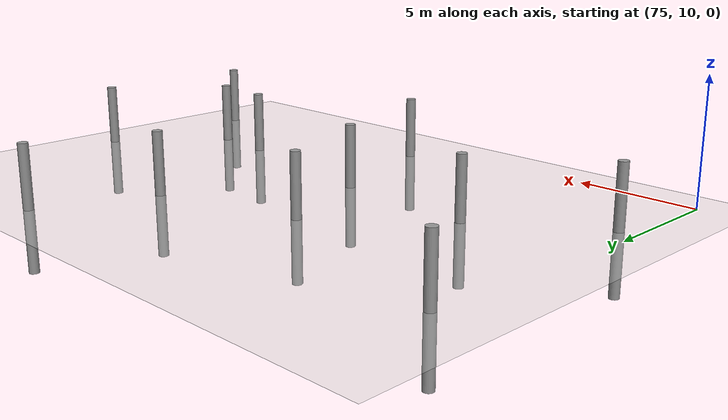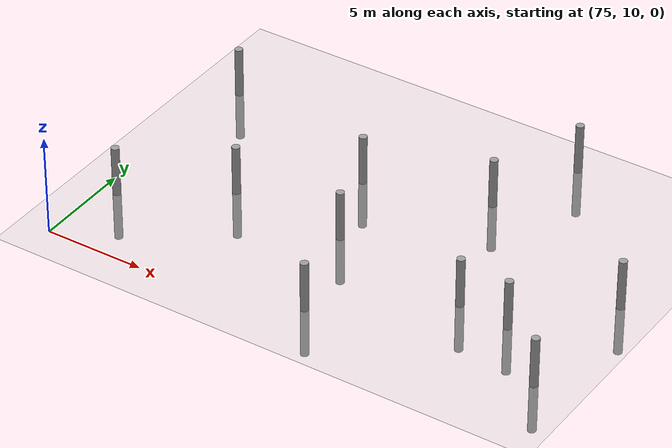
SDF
<sdf version="1.6">
 <world name="default">
  <model name="ground_plane">
   <static>1</static>
   <link name="link">
    <collision name="collision">
     <geometry><plane><normal>0 0 1</normal><size>100 100</size></plane></geometry>
     <surface><friction><ode><mu>100</mu><mu2>50</mu2></ode></friction></surface>
    </collision>
    <visual name="visual">
     <cast_shadows>0</cast_shadows>
     <geometry><plane><normal>0 0 1</normal><size>100 100</size></plane></geometry>
     <material>
      <script><uri>file://media/materials/scripts/gazebo.material</uri><name>Gazebo/Grey</name></script>
     </material>
    </visual>
   </link>
  </model>
  <model name="empty_pillars_3">
   <model name="empty_pillar_clone">
    <link name="link">
     <inertial>
      <mass>1</mass>
      <inertia><ixx>0.145833</ixx><ixy>0</ixy><ixz>0</ixz><iyy>0.145833</iyy><iyz>0</iyz><izz>0.125</izz></inertia>
     </inertial>
     <visual name="visual">
      <geometry><cylinder><radius>0.2</radius><length>5</length></cylinder></geometry>
      <material>
       <script><name>Gazebo/Grey</name><uri>file://media/materials/scripts/gazebo.material</uri></script>
       <shader type="vertex"><normal_map>__default__</normal_map></shader>
       <ambient>0.3 0.3 0.3 1</ambient>
       <diffuse>0.7 0.7 0.7 1</diffuse>
       <specular>0.01 0.01 0.01 1</specular>
       <emissive>0 0 0 1</emissive>
      </material>
     </visual>
     <collision name="collision">
      <geometry><cylinder><radius>0.05</radius><length>5</length></cylinder></geometry>
      <surface>
       <friction>
        <ode><mu>1</mu><mu2>1</mu2><fdir1>0 0 0</fdir1><slip1>0</slip1><slip2>0</slip2></ode>
        <torsional>
         <coefficient>1</coefficient>
         <patch_radius>0</patch_radius>
         <surface_radius>0</surface_radius>
         <use_patch_radius>1</use_patch_radius>
         <ode><slip>0</slip></ode>
        </torsional>
       </friction>
       <bounce><restitution_coefficient>0</restitution_coefficient><threshold>1e+06</threshold></bounce>
       <contact>
        <collide_without_contact>0</collide_without_contact>
        <collide_without_contact_bitmask>1</collide_without_contact_bitmask>
        <collide_bitmask>1</collide_bitmask>
        <ode>
         <soft_cfm>0</soft_cfm>
         <soft_erp>0.2</soft_erp>
         <kp>1e+13</kp>
         <kd>1</kd>
         <max_vel>0.01</max_vel>
         <min_depth>0</min_depth>
        </ode>
        <bullet>
         <split_impulse>1</split_impulse>
         <split_impulse_penetration_threshold>-0.01</split_impulse_penetration_threshold>
         <soft_cfm>0</soft_cfm>
         <soft_erp>0.2</soft_erp>
         <kp>1e+13</kp>
         <kd>1</kd>
        </bullet>
       </contact>
      </surface>
     </collision>
    </link>
    <static>0</static>
    <pose>1.47843 -4.49529 0 0 -0 0</pose>
   </model>
   <model name="empty_pillar_clone_0">
    <link name="link">
     <inertial>
      <mass>1</mass>
      <inertia><ixx>0.145833</ixx><ixy>0</ixy><ixz>0</ixz><iyy>0.145833</iyy><iyz>0</iyz><izz>0.125</izz></inertia>
     </inertial>
     <visual name="visual">
      <geometry><cylinder><radius>0.2</radius><length>5</length></cylinder></geometry>
      <material>
       <script><name>Gazebo/Grey</name><uri>file://media/materials/scripts/gazebo.material</uri></script>
       <shader type="vertex"><normal_map>__default__</normal_map></shader>
       <ambient>0.3 0.3 0.3 1</ambient>
       <diffuse>0.7 0.7 0.7 1</diffuse>
       <specular>0.01 0.01 0.01 1</specular>
       <emissive>0 0 0 1</emissive>
      </material>
     </visual>
     <collision name="collision">
      <geometry><cylinder><radius>0.05</radius><length>5</length></cylinder></geometry>
      <surface>
       <friction>
        <ode><mu>1</mu><mu2>1</mu2><fdir1>0 0 0</fdir1><slip1>0</slip1><slip2>0</slip2></ode>
        <torsional>
         <coefficient>1</coefficient>
         <patch_radius>0</patch_radius>
         <surface_radius>0</surface_radius>
         <use_patch_radius>1</use_patch_radius>
         <ode><slip>0</slip></ode>
        </torsional>
       </friction>
       <bounce><restitution_coefficient>0</restitution_coefficient><threshold>1e+06</threshold></bounce>
       <contact>
        <collide_without_contact>0</collide_without_contact>
        <collide_without_contact_bitmask>1</collide_without_contact_bitmask>
        <collide_bitmask>1</collide_bitmask>
        <ode>
         <soft_cfm>0</soft_cfm>
         <soft_erp>0.2</soft_erp>
         <kp>1e+13</kp>
         <kd>1</kd>
         <max_vel>0.01</max_vel>
         <min_depth>0</min_depth>
        </ode>
        <bullet>
         <split_impulse>1</split_impulse>
         <split_impulse_penetration_threshold>-0.01</split_impulse_penetration_threshold>
         <soft_cfm>0</soft_cfm>
         <soft_erp>0.2</soft_erp>
         <kp>1e+13</kp>
         <kd>1</kd>
        </bullet>
       </contact>
      </surface>
     </collision>
    </link>
    <static>0</static>
    <pose>10.3453 -7.35986 0 0 -0 0</pose>
   </model>
   <model name="empty_pillar_clone_10">
    <link name="link">
     <inertial>
      <mass>1</mass>
      <inertia><ixx>0.145833</ixx><ixy>0</ixy><ixz>0</ixz><iyy>0.145833</iyy><iyz>0</iyz><izz>0.125</izz></inertia>
     </inertial>
     <visual name="visual">
      <geometry><cylinder><radius>0.2</radius><length>5</length></cylinder></geometry>
      <material>
       <script><name>Gazebo/Grey</name><uri>file://media/materials/scripts/gazebo.material</uri></script>
       <shader type="vertex"><normal_map>__default__</normal_map></shader>
       <ambient>0.3 0.3 0.3 1</ambient>
       <diffuse>0.7 0.7 0.7 1</diffuse>
       <specular>0.01 0.01 0.01 1</specular>
       <emissive>0 0 0 1</emissive>
      </material>
     </visual>
     <collision name="collision">
      <geometry><cylinder><radius>0.05</radius><length>5</length></cylinder></geometry>
      <surface>
       <friction>
        <ode><mu>1</mu><mu2>1</mu2><fdir1>0 0 0</fdir1><slip1>0</slip1><slip2>0</slip2></ode>
        <torsional>
         <coefficient>1</coefficient>
         <patch_radius>0</patch_radius>
         <surface_radius>0</surface_radius>
         <use_patch_radius>1</use_patch_radius>
         <ode><slip>0</slip></ode>
        </torsional>
       </friction>
       <bounce><restitution_coefficient>0</restitution_coefficient><threshold>1e+06</threshold></bounce>
       <contact>
        <collide_without_contact>0</collide_without_contact>
        <collide_without_contact_bitmask>1</collide_without_contact_bitmask>
        <collide_bitmask>1</collide_bitmask>
        <ode>
         <soft_cfm>0</soft_cfm>
         <soft_erp>0.2</soft_erp>
         <kp>1e+13</kp>
         <kd>1</kd>
         <max_vel>0.01</max_vel>
         <min_depth>0</min_depth>
        </ode>
        <bullet>
         <split_impulse>1</split_impulse>
         <split_impulse_penetration_threshold>-0.01</split_impulse_penetration_threshold>
         <soft_cfm>0</soft_cfm>
         <soft_erp>0.2</soft_erp>
         <kp>1e+13</kp>
         <kd>1</kd>
        </bullet>
       </contact>
      </surface>
     </collision>
    </link>
    <static>0</static>
    <pose>13.5083 -16.8403 0 0 -0 0</pose>
   </model>
   <model name="empty_pillar_clone_3">
    <link name="link">
     <inertial>
      <mass>1</mass>
      <inertia><ixx>0.145833</ixx><ixy>0</ixy><ixz>0</ixz><iyy>0.145833</iyy><iyz>0</iyz><izz>0.125</izz></inertia>
     </inertial>
     <visual name="visual">
      <geometry><cylinder><radius>0.2</radius><length>5</length></cylinder></geometry>
      <material>
       <script><name>Gazebo/Grey</name><uri>file://media/materials/scripts/gazebo.material</uri></script>
       <shader type="vertex"><normal_map>__default__</normal_map></shader>
       <ambient>0.3 0.3 0.3 1</ambient>
       <diffuse>0.7 0.7 0.7 1</diffuse>
       <specular>0.01 0.01 0.01 1</specular>
       <emissive>0 0 0 1</emissive>
      </material>
     </visual>
     <collision name="collision">
      <geometry><cylinder><radius>0.05</radius><length>5</length></cylinder></geometry>
      <surface>
       <friction>
        <ode><mu>1</mu><mu2>1</mu2><fdir1>0 0 0</fdir1><slip1>0</slip1><slip2>0</slip2></ode>
        <torsional>
         <coefficient>1</coefficient>
         <patch_radius>0</patch_radius>
         <surface_radius>0</surface_radius>
         <use_patch_radius>1</use_patch_radius>
         <ode><slip>0</slip></ode>
        </torsional>
       </friction>
       <bounce><restitution_coefficient>0</restitution_coefficient><threshold>1e+06</threshold></bounce>
       <contact>
        <collide_without_contact>0</collide_without_contact>
        <collide_without_contact_bitmask>1</collide_without_contact_bitmask>
        <collide_bitmask>1</collide_bitmask>
        <ode>
         <soft_cfm>0</soft_cfm>
         <soft_erp>0.2</soft_erp>
         <kp>1e+13</kp>
         <kd>1</kd>
         <max_vel>0.01</max_vel>
         <min_depth>0</min_depth>
        </ode>
        <bullet>
         <split_impulse>1</split_impulse>
         <split_impulse_penetration_threshold>-0.01</split_impulse_penetration_threshold>
         <soft_cfm>0</soft_cfm>
         <soft_erp>0.2</soft_erp>
         <kp>1e+13</kp>
         <kd>1</kd>
        </bullet>
       </contact>
      </surface>
     </collision>
    </link>
    <static>0</static>
    <pose>5.99316 -11.2211 0 0 -0 0</pose>
   </model>
   <model name="empty_pillar_clone_33">
    <link name="link">
     <inertial>
      <mass>1</mass>
      <inertia><ixx>0.145833</ixx><ixy>0</ixy><ixz>0</ixz><iyy>0.145833</iyy><iyz>0</iyz><izz>0.125</izz></inertia>
     </inertial>
     <visual name="visual">
      <geometry><cylinder><radius>0.2</radius><length>5</length></cylinder></geometry>
      <material>
       <script><name>Gazebo/Grey</name><uri>file://media/materials/scripts/gazebo.material</uri></script>
       <shader type="vertex"><normal_map>__default__</normal_map></shader>
       <ambient>0.3 0.3 0.3 1</ambient>
       <diffuse>0.7 0.7 0.7 1</diffuse>
       <specular>0.01 0.01 0.01 1</specular>
       <emissive>0 0 0 1</emissive>
      </material>
     </visual>
     <collision name="collision">
      <geometry><cylinder><radius>0.05</radius><length>5</length></cylinder></geometry>
      <surface>
       <friction>
        <ode><mu>1</mu><mu2>1</mu2><fdir1>0 0 0</fdir1><slip1>0</slip1><slip2>0</slip2></ode>
        <torsional>
         <coefficient>1</coefficient>
         <patch_radius>0</patch_radius>
         <surface_radius>0</surface_radius>
         <use_patch_radius>1</use_patch_radius>
         <ode><slip>0</slip></ode>
        </torsional>
       </friction>
       <bounce><restitution_coefficient>0</restitution_coefficient><threshold>1e+06</threshold></bounce>
       <contact>
        <collide_without_contact>0</collide_without_contact>
        <collide_without_contact_bitmask>1</collide_without_contact_bitmask>
        <collide_bitmask>1</collide_bitmask>
        <ode>
         <soft_cfm>0</soft_cfm>
         <soft_erp>0.2</soft_erp>
         <kp>1e+13</kp>
         <kd>1</kd>
         <max_vel>0.01</max_vel>
         <min_depth>0</min_depth>
        </ode>
        <bullet>
         <split_impulse>1</split_impulse>
         <split_impulse_penetration_threshold>-0.01</split_impulse_penetration_threshold>
         <soft_cfm>0</soft_cfm>
         <soft_erp>0.2</soft_erp>
         <kp>1e+13</kp>
         <kd>1</kd>
        </bullet>
       </contact>
      </surface>
     </collision>
    </link>
    <static>0</static>
    <pose>21.5621 -13.0704 0 0 -0 0</pose>
   </model>
   <model name="empty_pillar_clone_4">
    <link name="link">
     <inertial>
      <mass>1</mass>
      <inertia><ixx>0.145833</ixx><ixy>0</ixy><ixz>0</ixz><iyy>0.145833</iyy><iyz>0</iyz><izz>0.125</izz></inertia>
     </inertial>
     <visual name="visual">
      <geometry><cylinder><radius>0.2</radius><length>5</length></cylinder></geometry>
      <material>
       <script><name>Gazebo/Grey</name><uri>file://media/materials/scripts/gazebo.material</uri></script>
       <shader type="vertex"><normal_map>__default__</normal_map></shader>
       <ambient>0.3 0.3 0.3 1</ambient>
       <diffuse>0.7 0.7 0.7 1</diffuse>
       <specular>0.01 0.01 0.01 1</specular>
       <emissive>0 0 0 1</emissive>
      </material>
     </visual>
     <collision name="collision">
      <geometry><cylinder><radius>0.05</radius><length>5</length></cylinder></geometry>
      <surface>
       <friction>
        <ode><mu>1</mu><mu2>1</mu2><fdir1>0 0 0</fdir1><slip1>0</slip1><slip2>0</slip2></ode>
        <torsional>
         <coefficient>1</coefficient>
         <patch_radius>0</patch_radius>
         <surface_radius>0</surface_radius>
         <use_patch_radius>1</use_patch_radius>
         <ode><slip>0</slip></ode>
        </torsional>
       </friction>
       <bounce><restitution_coefficient>0</restitution_coefficient><threshold>1e+06</threshold></bounce>
       <contact>
        <collide_without_contact>0</collide_without_contact>
        <collide_without_contact_bitmask>1</collide_without_contact_bitmask>
        <collide_bitmask>1</collide_bitmask>
        <ode>
         <soft_cfm>0</soft_cfm>
         <soft_erp>0.2</soft_erp>
         <kp>1e+13</kp>
         <kd>1</kd>
         <max_vel>0.01</max_vel>
         <min_depth>0</min_depth>
        </ode>
        <bullet>
         <split_impulse>1</split_impulse>
         <split_impulse_penetration_threshold>-0.01</split_impulse_penetration_threshold>
         <soft_cfm>0</soft_cfm>
         <soft_erp>0.2</soft_erp>
         <kp>1e+13</kp>
         <kd>1</kd>
        </bullet>
       </contact>
      </surface>
     </collision>
    </link>
    <static>0</static>
    <pose>1.48428 -14.2998 0 0 -0 0</pose>
   </model>
   <model name="empty_pillar_clone_48">
    <link name="link">
     <inertial>
      <mass>1</mass>
      <inertia><ixx>0.145833</ixx><ixy>0</ixy><ixz>0</ixz><iyy>0.145833</iyy><iyz>0</iyz><izz>0.125</izz></inertia>
     </inertial>
     <visual name="visual">
      <geometry><cylinder><radius>0.2</radius><length>5</length></cylinder></geometry>
      <material>
       <script><name>Gazebo/Grey</name><uri>file://media/materials/scripts/gazebo.material</uri></script>
       <shader type="vertex"><normal_map>__default__</normal_map></shader>
       <ambient>0.3 0.3 0.3 1</ambient>
       <diffuse>0.7 0.7 0.7 1</diffuse>
       <specular>0.01 0.01 0.01 1</specular>
       <emissive>0 0 0 1</emissive>
      </material>
     </visual>
     <collision name="collision">
      <geometry><cylinder><radius>0.05</radius><length>5</length></cylinder></geometry>
      <surface>
       <friction>
        <ode><mu>1</mu><mu2>1</mu2><fdir1>0 0 0</fdir1><slip1>0</slip1><slip2>0</slip2></ode>
        <torsional>
         <coefficient>1</coefficient>
         <patch_radius>0</patch_radius>
         <surface_radius>0</surface_radius>
         <use_patch_radius>1</use_patch_radius>
         <ode><slip>0</slip></ode>
        </torsional>
       </friction>
       <bounce><restitution_coefficient>0</restitution_coefficient><threshold>1e+06</threshold></bounce>
       <contact>
        <collide_without_contact>0</collide_without_contact>
        <collide_without_contact_bitmask>1</collide_without_contact_bitmask>
        <collide_bitmask>1</collide_bitmask>
        <ode>
         <soft_cfm>0</soft_cfm>
         <soft_erp>0.2</soft_erp>
         <kp>1e+13</kp>
         <kd>1</kd>
         <max_vel>0.01</max_vel>
         <min_depth>0</min_depth>
        </ode>
        <bullet>
         <split_impulse>1</split_impulse>
         <split_impulse_penetration_threshold>-0.01</split_impulse_penetration_threshold>
         <soft_cfm>0</soft_cfm>
         <soft_erp>0.2</soft_erp>
         <kp>1e+13</kp>
         <kd>1</kd>
        </bullet>
       </contact>
      </surface>
     </collision>
    </link>
    <static>0</static>
    <pose>16.2633 -5.65052 0 0 -0 0</pose>
   </model>
   <model name="empty_pillar_clone_51">
    <link name="link">
     <inertial>
      <mass>1</mass>
      <inertia><ixx>0.145833</ixx><ixy>0</ixy><ixz>0</ixz><iyy>0.145833</iyy><iyz>0</iyz><izz>0.125</izz></inertia>
     </inertial>
     <visual name="visual">
      <geometry><cylinder><radius>0.2</radius><length>5</length></cylinder></geometry>
      <material>
       <script><name>Gazebo/Grey</name><uri>file://media/materials/scripts/gazebo.material</uri></script>
       <shader type="vertex"><normal_map>__default__</normal_map></shader>
       <ambient>0.3 0.3 0.3 1</ambient>
       <diffuse>0.7 0.7 0.7 1</diffuse>
       <specular>0.01 0.01 0.01 1</specular>
       <emissive>0 0 0 1</emissive>
      </material>
     </visual>
     <collision name="collision">
      <geometry><cylinder><radius>0.05</radius><length>5</length></cylinder></geometry>
      <surface>
       <friction>
        <ode><mu>1</mu><mu2>1</mu2><fdir1>0 0 0</fdir1><slip1>0</slip1><slip2>0</slip2></ode>
        <torsional>
         <coefficient>1</coefficient>
         <patch_radius>0</patch_radius>
         <surface_radius>0</surface_radius>
         <use_patch_radius>1</use_patch_radius>
         <ode><slip>0</slip></ode>
        </torsional>
       </friction>
       <bounce><restitution_coefficient>0</restitution_coefficient><threshold>1e+06</threshold></bounce>
       <contact>
        <collide_without_contact>0</collide_without_contact>
        <collide_without_contact_bitmask>1</collide_without_contact_bitmask>
        <collide_bitmask>1</collide_bitmask>
        <ode>
         <soft_cfm>0</soft_cfm>
         <soft_erp>0.2</soft_erp>
         <kp>1e+13</kp>
         <kd>1</kd>
         <max_vel>0.01</max_vel>
         <min_depth>0</min_depth>
        </ode>
        <bullet>
         <split_impulse>1</split_impulse>
         <split_impulse_penetration_threshold>-0.01</split_impulse_penetration_threshold>
         <soft_cfm>0</soft_cfm>
         <soft_erp>0.2</soft_erp>
         <kp>1e+13</kp>
         <kd>1</kd>
        </bullet>
       </contact>
      </surface>
     </collision>
    </link>
    <static>0</static>
    <pose>11.8943 -11.5792 0 0 -0 0</pose>
   </model>
   <model name="empty_pillar_clone_54">
    <link name="link">
     <inertial>
      <mass>1</mass>
      <inertia><ixx>0.145833</ixx><ixy>0</ixy><ixz>0</ixz><iyy>0.145833</iyy><iyz>0</iyz><izz>0.125</izz></inertia>
     </inertial>
     <visual name="visual">
      <geometry><cylinder><radius>0.2</radius><length>5</length></cylinder></geometry>
      <material>
       <script><name>Gazebo/Grey</name><uri>file://media/materials/scripts/gazebo.material</uri></script>
       <shader type="vertex"><normal_map>__default__</normal_map></shader>
       <ambient>0.3 0.3 0.3 1</ambient>
       <diffuse>0.7 0.7 0.7 1</diffuse>
       <specular>0.01 0.01 0.01 1</specular>
       <emissive>0 0 0 1</emissive>
      </material>
     </visual>
     <collision name="collision">
      <geometry><cylinder><radius>0.05</radius><length>5</length></cylinder></geometry>
      <surface>
       <friction>
        <ode><mu>1</mu><mu2>1</mu2><fdir1>0 0 0</fdir1><slip1>0</slip1><slip2>0</slip2></ode>
        <torsional>
         <coefficient>1</coefficient>
         <patch_radius>0</patch_radius>
         <surface_radius>0</surface_radius>
         <use_patch_radius>1</use_patch_radius>
         <ode><slip>0</slip></ode>
        </torsional>
       </friction>
       <bounce><restitution_coefficient>0</restitution_coefficient><threshold>1e+06</threshold></bounce>
       <contact>
        <collide_without_contact>0</collide_without_contact>
        <collide_without_contact_bitmask>1</collide_without_contact_bitmask>
        <collide_bitmask>1</collide_bitmask>
        <ode>
         <soft_cfm>0</soft_cfm>
         <soft_erp>0.2</soft_erp>
         <kp>1e+13</kp>
         <kd>1</kd>
         <max_vel>0.01</max_vel>
         <min_depth>0</min_depth>
        </ode>
        <bullet>
         <split_impulse>1</split_impulse>
         <split_impulse_penetration_threshold>-0.01</split_impulse_penetration_threshold>
         <soft_cfm>0</soft_cfm>
         <soft_erp>0.2</soft_erp>
         <kp>1e+13</kp>
         <kd>1</kd>
        </bullet>
       </contact>
      </surface>
     </collision>
    </link>
    <static>0</static>
    <pose>24.557 -15.8784 0 0 -0 0</pose>
   </model>
   <model name="empty_pillar_clone_6">
    <link name="link">
     <inertial>
      <mass>1</mass>
      <inertia><ixx>0.145833</ixx><ixy>0</ixy><ixz>0</ixz><iyy>0.145833</iyy><iyz>0</iyz><izz>0.125</izz></inertia>
     </inertial>
     <visual name="visual">
      <geometry><cylinder><radius>0.2</radius><length>5</length></cylinder></geometry>
      <material>
       <script><name>Gazebo/Grey</name><uri>file://media/materials/scripts/gazebo.material</uri></script>
       <shader type="vertex"><normal_map>__default__</normal_map></shader>
       <ambient>0.3 0.3 0.3 1</ambient>
       <diffuse>0.7 0.7 0.7 1</diffuse>
       <specular>0.01 0.01 0.01 1</specular>
       <emissive>0 0 0 1</emissive>
      </material>
     </visual>
     <collision name="collision">
      <geometry><cylinder><radius>0.05</radius><length>5</length></cylinder></geometry>
      <surface>
       <friction>
        <ode><mu>1</mu><mu2>1</mu2><fdir1>0 0 0</fdir1><slip1>0</slip1><slip2>0</slip2></ode>
        <torsional>
         <coefficient>1</coefficient>
         <patch_radius>0</patch_radius>
         <surface_radius>0</surface_radius>
         <use_patch_radius>1</use_patch_radius>
         <ode><slip>0</slip></ode>
        </torsional>
       </friction>
       <bounce><restitution_coefficient>0</restitution_coefficient><threshold>1e+06</threshold></bounce>
       <contact>
        <collide_without_contact>0</collide_without_contact>
        <collide_without_contact_bitmask>1</collide_without_contact_bitmask>
        <collide_bitmask>1</collide_bitmask>
        <ode>
         <soft_cfm>0</soft_cfm>
         <soft_erp>0.2</soft_erp>
         <kp>1e+13</kp>
         <kd>1</kd>
         <max_vel>0.01</max_vel>
         <min_depth>0</min_depth>
        </ode>
        <bullet>
         <split_impulse>1</split_impulse>
         <split_impulse_penetration_threshold>-0.01</split_impulse_penetration_threshold>
         <soft_cfm>0</soft_cfm>
         <soft_erp>0.2</soft_erp>
         <kp>1e+13</kp>
         <kd>1</kd>
        </bullet>
       </contact>
      </surface>
     </collision>
    </link>
    <static>0</static>
    <pose>24.9156 -9.11394 0 0 -0 0</pose>
   </model>
   <model name="empty_pillar_clone_8">
    <link name="link">
     <inertial>
      <mass>1</mass>
      <inertia><ixx>0.145833</ixx><ixy>0</ixy><ixz>0</ixz><iyy>0.145833</iyy><iyz>0</iyz><izz>0.125</izz></inertia>
     </inertial>
     <visual name="visual">
      <geometry><cylinder><radius>0.2</radius><length>5</length></cylinder></geometry>
      <material>
       <script><name>Gazebo/Grey</name><uri>file://media/materials/scripts/gazebo.material</uri></script>
       <shader type="vertex"><normal_map>__default__</normal_map></shader>
       <ambient>0.3 0.3 0.3 1</ambient>
       <diffuse>0.7 0.7 0.7 1</diffuse>
       <specular>0.01 0.01 0.01 1</specular>
       <emissive>0 0 0 1</emissive>
      </material>
     </visual>
     <collision name="collision">
      <geometry><cylinder><radius>0.05</radius><length>5</length></cylinder></geometry>
      <surface>
       <friction>
        <ode><mu>1</mu><mu2>1</mu2><fdir1>0 0 0</fdir1><slip1>0</slip1><slip2>0</slip2></ode>
        <torsional>
         <coefficient>1</coefficient>
         <patch_radius>0</patch_radius>
         <surface_radius>0</surface_radius>
         <use_patch_radius>1</use_patch_radius>
         <ode><slip>0</slip></ode>
        </torsional>
       </friction>
       <bounce><restitution_coefficient>0</restitution_coefficient><threshold>1e+06</threshold></bounce>
       <contact>
        <collide_without_contact>0</collide_without_contact>
        <collide_without_contact_bitmask>1</collide_without_contact_bitmask>
        <collide_bitmask>1</collide_bitmask>
        <ode>
         <soft_cfm>0</soft_cfm>
         <soft_erp>0.2</soft_erp>
         <kp>1e+13</kp>
         <kd>1</kd>
         <max_vel>0.01</max_vel>
         <min_depth>0</min_depth>
        </ode>
        <bullet>
         <split_impulse>1</split_impulse>
         <split_impulse_penetration_threshold>-0.01</split_impulse_penetration_threshold>
         <soft_cfm>0</soft_cfm>
         <soft_erp>0.2</soft_erp>
         <kp>1e+13</kp>
         <kd>1</kd>
        </bullet>
       </contact>
      </surface>
     </collision>
    </link>
    <static>0</static>
    <pose>18.9854 -12.8403 0 0 -0 0</pose>
   </model>
   <model name="empty_pillar_clone_9">
    <link name="link">
     <inertial>
      <mass>1</mass>
      <inertia><ixx>0.145833</ixx><ixy>0</ixy><ixz>0</ixz><iyy>0.145833</iyy><iyz>0</iyz><izz>0.125</izz></inertia>
     </inertial>
     <visual name="visual">
      <geometry><cylinder><radius>0.2</radius><length>5</length></cylinder></geometry>
      <material>
       <script><name>Gazebo/Grey</name><uri>file://media/materials/scripts/gazebo.material</uri></script>
       <shader type="vertex"><normal_map>__default__</normal_map></shader>
       <ambient>0.3 0.3 0.3 1</ambient>
       <diffuse>0.7 0.7 0.7 1</diffuse>
       <specular>0.01 0.01 0.01 1</specular>
       <emissive>0 0 0 1</emissive>
      </material>
     </visual>
     <collision name="collision">
      <geometry><cylinder><radius>0.05</radius><length>5</length></cylinder></geometry>
      <surface>
       <friction>
        <ode><mu>1</mu><mu2>1</mu2><fdir1>0 0 0</fdir1><slip1>0</slip1><slip2>0</slip2></ode>
        <torsional>
         <coefficient>1</coefficient>
         <patch_radius>0</patch_radius>
         <surface_radius>0</surface_radius>
         <use_patch_radius>1</use_patch_radius>
         <ode><slip>0</slip></ode>
        </torsional>
       </friction>
       <bounce><restitution_coefficient>0</restitution_coefficient><threshold>1e+06</threshold></bounce>
       <contact>
        <collide_without_contact>0</collide_without_contact>
        <collide_without_contact_bitmask>1</collide_without_contact_bitmask>
        <collide_bitmask>1</collide_bitmask>
        <ode>
         <soft_cfm>0</soft_cfm>
         <soft_erp>0.2</soft_erp>
         <kp>1e+13</kp>
         <kd>1</kd>
         <max_vel>0.01</max_vel>
         <min_depth>0</min_depth>
        </ode>
        <bullet>
         <split_impulse>1</split_impulse>
         <split_impulse_penetration_threshold>-0.01</split_impulse_penetration_threshold>
         <soft_cfm>0</soft_cfm>
         <soft_erp>0.2</soft_erp>
         <kp>1e+13</kp>
         <kd>1</kd>
        </bullet>
       </contact>
      </surface>
     </collision>
    </link>
    <static>0</static>
    <pose>18.1111 -1.13899 0 0 -0 0</pose>
   </model>
   <static>0</static>
   <pose>74.2615 28.3982 0 0 -0 0</pose>
  </model>
 </world>
</sdf>
